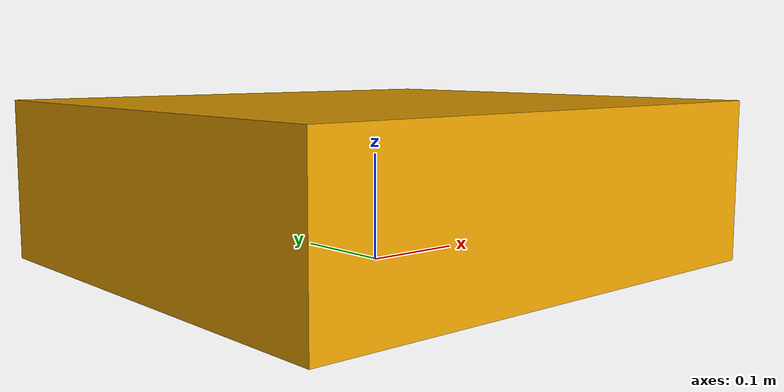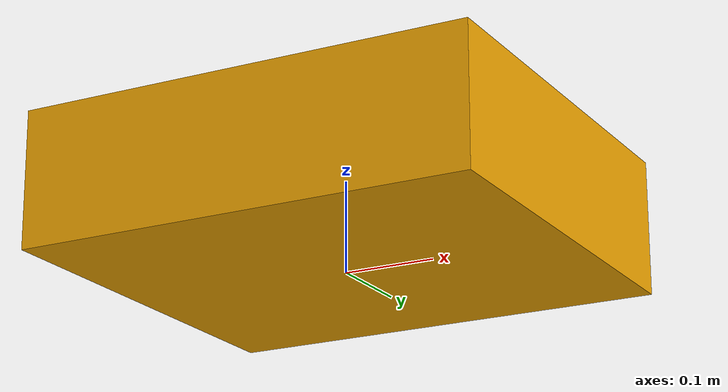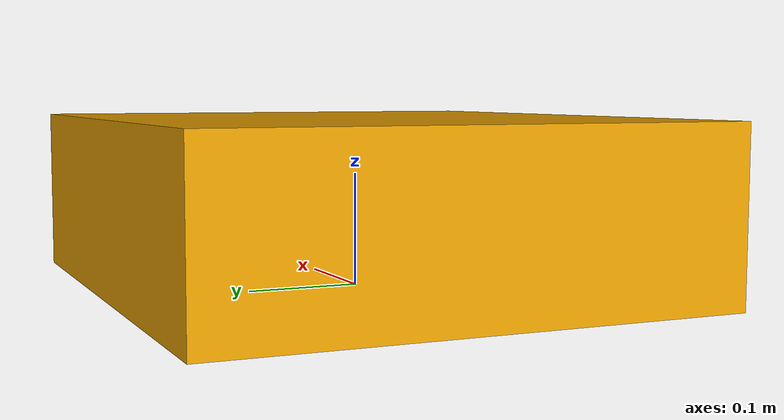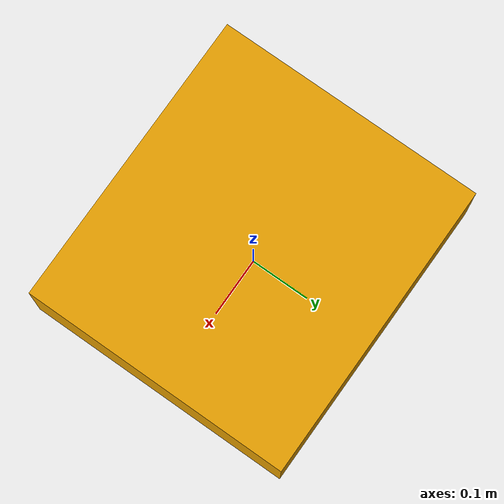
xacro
<robot xmlns:xacro="http://www.ros.org/wiki/xacro">

  <!--link name="base_footprint"/-->

  <link name="base_link">
    <visual>
      <geometry>
        <box size="0.50 0.45 0.15"/>
      </geometry>
      <origin xyz="0 0 0.075"/>
    </visual>

    <collision>
      <geometry>
        <box size="0.50 0.45 0.15"/>
      </geometry>
      <origin xyz="0 0 0.075"/>
    </collision>

    <xacro:box_inertial mass="5" x="0.50" y="0.45" z="0.15"/>
  </link>

</robot>
